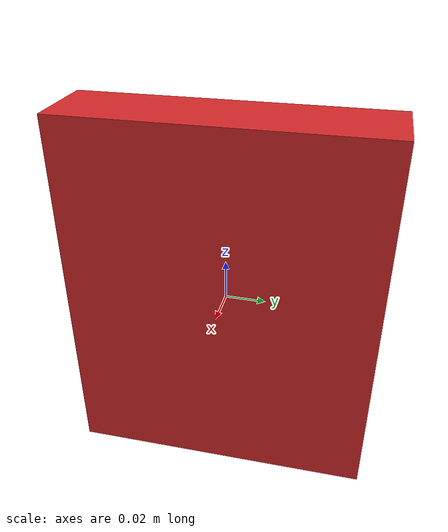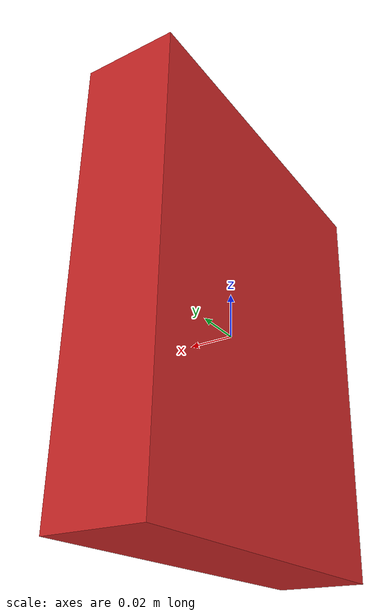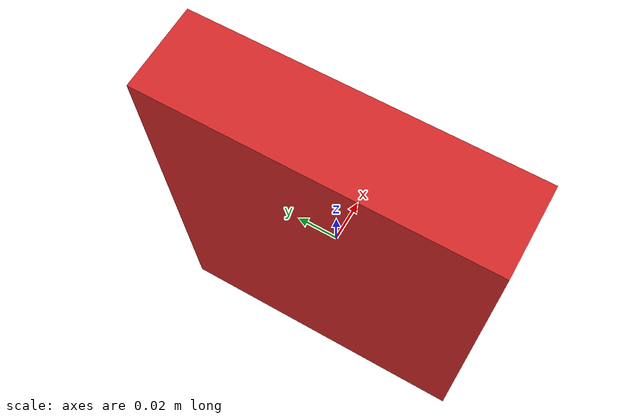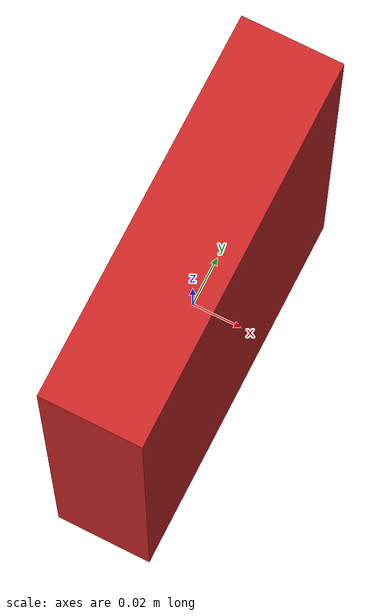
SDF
<?xml version="1.0" ?>
<sdf version="1.4">
  <model name="pal_textured_object">
    <static>0</static>
    <link name="box">
      <gravity>false</gravity>
      <visual name="visual">
        <geometry>
          <box>
            <size>0.04 0.154 0.1855</size>
          </box>
        </geometry>
        <material>
          <script>
	    <uri>model://pal_textured_object/material/scripts</uri>
	    <uri>model://pal_textured_object/material/textures</uri>
            <name>pal_textured_object</name>
          </script>
        </material>
      </visual>
      <collision name="collision">
        <geometry>
          <box>
            <size>0.04 0.154 0.1855</size>
          </box>
        </geometry>
      </collision>
    </link>
  </model>
</sdf>
